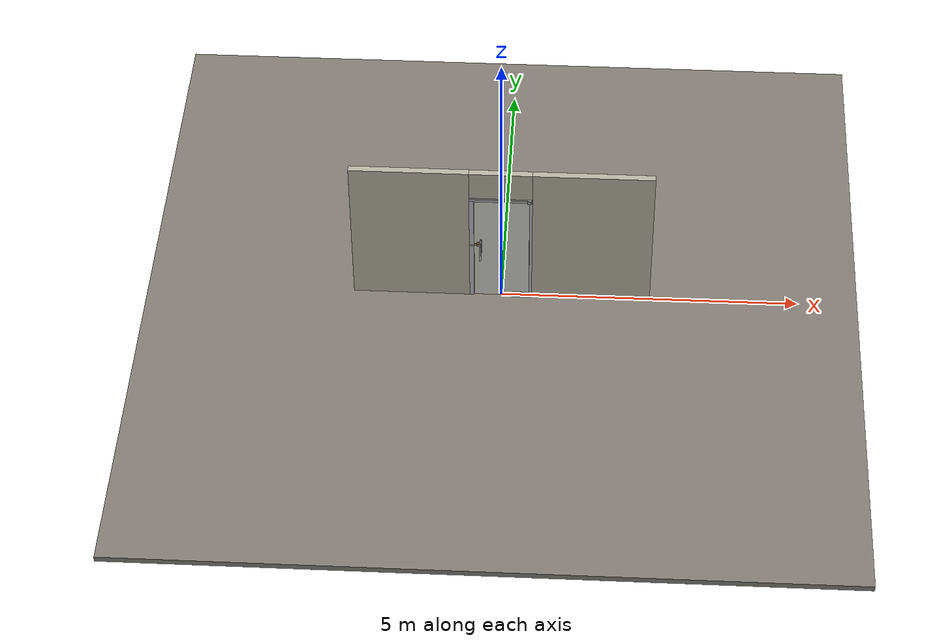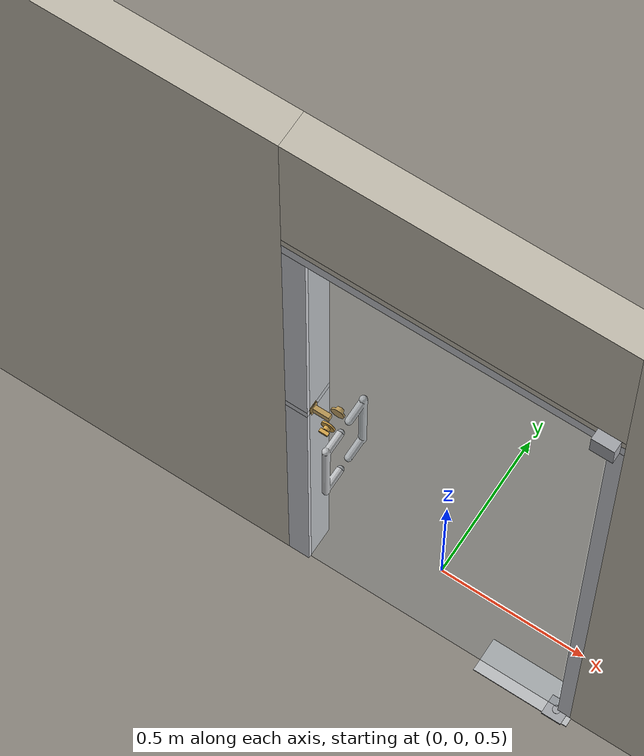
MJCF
<?xml version="1.0" ?>
<mujoco model="db0544_swing_single_full">
  <compiler angle="radian" meshdir="../../hardware" texturedir="../../textures" autolimits="true" inertiafromgeom="false"/>
  <option timestep="0.002" integrator="implicitfast" cone="elliptic" impratio="10" noslip_iterations="3">
    <flag multiccd="enable"/>
  </option>
  <size memory="16M"/>
  <default>
    <geom condim="4" solref="0.005 1" solimp="0.95 0.99 0.001"/>
    <joint solreflimit="0.005 1" solimplimit="0.95 0.99 0.001"/>
    <tendon solreflimit="0.005 1"/>
    <equality solref="0.002 1"/>
  </default>
  <visual>
    <headlight ambient="0.4 0.4 0.4" diffuse="0.7 0.7 0.7" specular="0.2 0.2 0.2"/>
    <quality shadowsize="4096"/>
    <map znear="0.01" zfar="60"/>
  </visual>
  <asset>
    <mesh name="cyl_face_e9e5036966" file="cyl_face_e9e5036966.obj"/>
    <mesh name="pull_f8d79d6331" file="pull_f8d79d6331.obj"/>
    <mesh name="thumbturn_eb5c9899a3" file="thumbturn_eb5c9899a3.obj"/>
    <material name="mat_floor" rgba="0.55 0.53 0.5 1" specular="0.2" shininess="0.15" reflectance="0"/>
    <material name="mat_wall" rgba="0.78 0.76 0.7 1" specular="0.2" shininess="0.1" reflectance="0"/>
    <material name="mat_leaf" rgba="0.85 0.92 0.95 0.25" specular="0.2" shininess="0.95" reflectance="0.1"/>
    <material name="mat_glass_leaf" rgba="0.85 0.92 0.95 0.25" specular="0.2" shininess="0.95" reflectance="0.1"/>
    <material name="mat_patch" rgba="0.75 0.76 0.77 1" specular="0.8" shininess="0.65" reflectance="0.4"/>
    <material name="mat_hinge" rgba="0.65 0.66 0.68 1" specular="0.74" shininess="0.5" reflectance="0.36"/>
    <material name="mat_op_stainless" rgba="0.75 0.76 0.77 1" specular="0.8" shininess="0.65" reflectance="0.4"/>
    <material name="mat_deadbolt" rgba="0.85 0.66 0.3 1" specular="0.8" shininess="0.75" reflectance="0.4"/>
    <material name="mat_frame" rgba="0.8 0.81 0.83 1" specular="0.8" shininess="0.6" reflectance="0.4"/>
    <material name="mat_closer" rgba="0.75 0.76 0.77 1" specular="0.8" shininess="0.65" reflectance="0.4"/>
    <texture name="skybox" type="skybox" builtin="gradient" rgb1="0.6 0.7 0.85" rgb2="0.9 0.92 0.95" width="256" height="256"/>
  </asset>
  <worldbody>
    <light name="sun" pos="1.5 -2.5 4" dir="-0.3 0.5 -0.8" directional="true" diffuse="0.8 0.8 0.8" specular="0.3 0.3 0.3" castshadow="true"/>
    <light name="fill" pos="-1.5 2.5 3" dir="0.3 -0.5 -0.7" directional="true" diffuse="0.35 0.35 0.4" castshadow="false"/>
    <camera name="robot_view" pos="0 -2.609812 1.812087" xyaxes="1 0 0 0 0.26963 0.962964" fovy="52"/>
    <camera name="far_view" pos="0 2.665812 1.812087" xyaxes="-1 0 0 0 -0.26963 0.962964" fovy="52"/>
    <camera name="iso" pos="-2.004737 -2.187762 2.234138" xyaxes="0.741536 -0.670913 0 0.242917 0.268487 0.932151" fovy="46"/>
    <camera name="detail_handle" pos="-0.173 -0.8975 1.296" xyaxes="0.97561 0.219512 0 -0.070934 0.315262 0.94635" fovy="38"/>
    <geom name="floor" type="box" size="6 6 0.05" pos="0 0 -0.05" material="mat_floor" group="0" contype="1" conaffinity="1" friction="0.8 0.005 0.0001" density="2400"/>
    <geom name="wall_left" type="box" size="0.9815 0.0575 1.3735" pos="-1.5185 0.028 1.3735" material="mat_wall" group="0" contype="1" conaffinity="1" friction="0.6 0.005 0.0001" density="800"/>
    <geom name="wall_right" type="box" size="0.9965 0.0575 1.3735" pos="1.5035 0.028 1.3735" material="mat_wall" group="0" contype="1" conaffinity="1" friction="0.6 0.005 0.0001" density="800"/>
    <geom name="wall_header" type="box" size="0.522 0.0575 0.2625" pos="-0.015 0.028 2.4845" material="mat_wall" group="0" contype="1" conaffinity="1" friction="0.6 0.005 0.0001" density="800"/>
    <geom name="pivot_bottom_socket" type="box" size="0.035 0.035 0.0085" pos="0.459 -0.0295 -0.0015" material="mat_hinge" group="1" contype="0" conaffinity="0" density="7850"/>
    <geom name="pivot_top_bracket" type="box" size="0.035 0.035 0.0355" pos="0.459 -0.0295 2.1865" material="mat_hinge" group="1" contype="0" conaffinity="0" density="7850"/>
    <geom name="leaf_deadbolt_strike_b" type="box" size="0.0155 0.003 0.0005" pos="-0.4615 0 1.1375" quat="0.5 0.5 0.5 0.5" material="mat_deadbolt" group="1" contype="0" conaffinity="0" density="7800"/>
    <geom name="leaf_deadbolt_strike_l" type="box" size="0.003 0.0155 0.0005" pos="-0.4615 -0.0125 1.156" quat="0.5 0.5 0.5 0.5" material="mat_deadbolt" group="1" contype="0" conaffinity="0" density="7800"/>
    <geom name="leaf_deadbolt_strike_t" type="box" size="0.0155 0.003 0.0005" pos="-0.4615 0 1.1745" quat="0.5 0.5 0.5 0.5" material="mat_deadbolt" group="1" contype="0" conaffinity="0" density="7800"/>
    <geom name="leaf_deadbolt_strike_r" type="box" size="0.003 0.0155 0.0005" pos="-0.4615 0.0125 1.156" quat="0.5 0.5 0.5 0.5" material="mat_deadbolt" group="1" contype="0" conaffinity="0" density="7800"/>
    <geom name="jamb_hinge" type="box" size="0.0225 0.0575 1.0735" pos="0.4845 0.028 1.0735" material="mat_frame" group="0" contype="1" conaffinity="1" friction="0.6 0.005 0.0001" density="300"/>
    <geom name="strike_1156_wall_n" type="box" size="0.0375 0.038 0.0155" pos="-0.4995 0.0475 1.156" material="mat_frame" group="0" contype="1" conaffinity="1" friction="0.6 0.005 0.0001" density="300"/>
    <geom name="strike_1156_wall_p" type="box" size="0.0375 0.01 0.0155" pos="-0.4995 -0.0195 1.156" material="mat_frame" group="0" contype="1" conaffinity="1" friction="0.6 0.005 0.0001" density="300"/>
    <geom name="strike_1156_back" type="box" size="0.0228 0.0095 0.0155" pos="-0.5142 0 1.156" material="mat_frame" group="0" contype="1" conaffinity="1" friction="0.6 0.005 0.0001" density="300"/>
    <geom name="jamb_strike_0" type="box" size="0.0375 0.0575 0.57025" pos="-0.4995 0.028 0.57025" material="mat_frame" group="0" contype="1" conaffinity="1" friction="0.6 0.005 0.0001" density="300"/>
    <geom name="jamb_strike_1" type="box" size="0.0375 0.0575 0.48775" pos="-0.4995 0.028 1.65925" material="mat_frame" group="0" contype="1" conaffinity="1" friction="0.6 0.005 0.0001" density="300"/>
    <geom name="jamb_head" type="box" size="0.522 0.0575 0.0225" pos="-0.015 0.028 2.1695" material="mat_frame" group="0" contype="1" conaffinity="1" friction="0.6 0.005 0.0001" density="300"/>
    <geom name="head_stud" type="box" size="0.522 0.0575 0.015" pos="-0.015 0.028 2.207" material="mat_wall" group="0" contype="1" conaffinity="1" friction="0.6 0.005 0.0001" density="500"/>
    <geom name="floor_spring_cover" type="box" size="0.17 0.06 0.002" pos="0.342 0 0.002" material="mat_closer" group="1" contype="0" conaffinity="0" density="7900"/>
    <site name="approach_point" pos="0 -1.5 0" quat="1 0 0 0" size="0.05" rgba="0.2 0.9 0.2 0.5" group="4"/>
    <site name="goal_point" pos="0 1.5 0" quat="1 0 0 0" size="0.05" rgba="0.2 0.9 0.2 0.5" group="4"/>
    <site name="door_plane_center" pos="0 0 1.0735" quat="1 0 0 0" size="0.02" rgba="0.2 0.9 0.2 0.5" group="4"/>
    <body name="leaf" pos="0.462 0 0">
      <inertial pos="-0.473726 0.00001 1.07432" mass="98.210936" quat="0.500374 -0.50058 -0.499424 -0.499621" diaginertia="7.053713946 36.244485605 43.217402044"/>
      <joint name="leaf_hinge" type="hinge" axis="0 0 1" pos="-0.003 -0.0295 0" limited="true" range="0 2.443461" solreflimit="0.02 1" damping="8.268966" frictionloss="2.092271" stiffness="17.118706" springref="-2.550426" armature="0.02"/>
      <geom name="leaf_glass" type="box" size="0.457 0.0225 1.067" pos="-0.463 0 1.076" material="mat_glass_leaf" group="0" contype="1" conaffinity="1" friction="0.4 0.005 0.0001" density="1"/>
      <geom name="pivot_bottom" type="cylinder" size="0.014 0.004" pos="-0.003 -0.0295 0.004" material="mat_hinge" group="1" contype="0" conaffinity="0" density="7850"/>
      <geom name="pivot_top" type="cylinder" size="0.014 0.004" pos="-0.003 -0.0295 2.147" material="mat_hinge" group="1" contype="0" conaffinity="0" density="7850"/>
      <geom name="leaf_pull_n" type="mesh" mesh="pull_f8d79d6331" pos="-0.815 -0.0225 1.016" quat="0 0 -0.707107 0.707107" material="mat_op_stainless" group="1" contype="0" conaffinity="0" density="3000"/>
      <geom name="leaf_pull_col_n" type="capsule" size="0.0125 0.13" pos="-0.815 -0.0975 1.016" material="mat_op_stainless" group="3" contype="1" conaffinity="1" rgba="0.8 0.3 0.3 0.25" friction="0.7 0.01 0.0001" density="3000"/>
      <geom name="leaf_pull_p" type="mesh" mesh="pull_f8d79d6331" pos="-0.815 0.0225 1.016" quat="0 0 0.707107 0.707107" material="mat_op_stainless" group="1" contype="0" conaffinity="0" density="3000"/>
      <geom name="leaf_pull_col_p" type="capsule" size="0.0125 0.13" pos="-0.815 0.0975 1.016" material="mat_op_stainless" group="3" contype="1" conaffinity="1" rgba="0.8 0.3 0.3 0.25" friction="0.7 0.01 0.0001" density="3000"/>
      <geom name="leaf_deadbolt_faceplate" type="box" size="0.0006 0.014 0.0245" pos="-0.9194 0 1.156" material="mat_deadbolt" group="1" contype="0" conaffinity="0" density="8500"/>
      <geom name="leaf_deadbolt_cylinder_face" type="mesh" mesh="cyl_face_e9e5036966" pos="-0.855 0.0225 1.156" quat="0 0 0.707107 0.707107" material="mat_deadbolt" group="1" contype="0" conaffinity="0" density="7100"/>
      <site name="leaf_pull_grip_n" pos="-0.815 -0.0975 1.016" quat="1 0 0 0" size="0.012" rgba="0.2 0.9 0.2 0.5" group="4"/>
      <site name="leaf_pull_grip_p" pos="-0.815 0.0975 1.016" quat="1 0 0 0" size="0.012" rgba="0.2 0.9 0.2 0.5" group="4"/>
      <site name="leaf_edge_mid" pos="-0.92 0 1.067" quat="1 0 0 0" size="0.02" rgba="0.2 0.9 0.2 0.5" group="4"/>
      <body name="leaf_deadbolt" pos="-0.92 0 1.156">
        <inertial pos="0.0277 0 0" mass="0.18836" quat="0 0 0.707107 0.707107" diaginertia="0.000013829 0.000052194 0.000057986"/>
        <joint name="leaf_deadbolt_slide" type="slide" axis="1 0 0" limited="true" range="0 0.0254" damping="5" frictionloss="1.5" armature="0.1" ref="0.0254"/>
        <geom name="leaf_deadbolt_box" type="box" size="0.0277 0.008 0.0125" pos="0.0277 0 0" material="mat_deadbolt" group="0" contype="1" conaffinity="1" friction="0.3 0.005 0.0001" density="8500"/>
      </body>
      <body name="leaf_deadbolt_thumbturn" pos="-0.855 -0.0225 1.156">
        <inertial pos="0 -0.012928 0" mass="0.178946" quat="0.707107 0.000001 0.000001 0.707107" diaginertia="0.000026045 0.000026215 0.000032438"/>
        <joint name="leaf_deadbolt_thumbturn_hinge" type="hinge" axis="0 1 0" limited="true" range="0 1.5708" damping="0.05" frictionloss="0.35" armature="0.005" ref="1.5708"/>
        <geom name="leaf_deadbolt_thumbturn_mesh" type="mesh" mesh="thumbturn_eb5c9899a3" pos="0 0 0" quat="0.500001 0.500001 -0.499999 0.499999" material="mat_deadbolt" group="0" contype="1" conaffinity="1" friction="0.6 0.005 0.0001" density="7100"/>
        <geom name="leaf_deadbolt_thumbturn_col" type="box" size="0.006 0.012 0.016" pos="0 -0.02 0" quat="0.707105 0 0.707108 0" material="mat_deadbolt" group="3" contype="1" conaffinity="1" rgba="0.8 0.3 0.3 0.25" friction="0.6 0.005 0.0001" density="7100"/>
      </body>
    </body>
  </worldbody>
  <equality>
    <joint name="leaf_deadbolt_couple" joint1="leaf_deadbolt_slide" joint2="leaf_deadbolt_thumbturn_hinge" polycoef="0 0.01617 0 0 0" active="true"/>
  </equality>
  <contact>
    <exclude body1="leaf_deadbolt" body2="leaf_deadbolt_thumbturn"/>
  </contact>
  <sensor>
    <jointpos name="leaf_hinge_pos" joint="leaf_hinge"/>
    <jointvel name="leaf_hinge_vel" joint="leaf_hinge"/>
    <jointpos name="leaf_deadbolt_slide_pos" joint="leaf_deadbolt_slide"/>
    <jointvel name="leaf_deadbolt_slide_vel" joint="leaf_deadbolt_slide"/>
    <jointpos name="leaf_deadbolt_thumbturn_hinge_pos" joint="leaf_deadbolt_thumbturn_hinge"/>
    <jointvel name="leaf_deadbolt_thumbturn_hinge_vel" joint="leaf_deadbolt_thumbturn_hinge"/>
  </sensor>
</mujoco>
